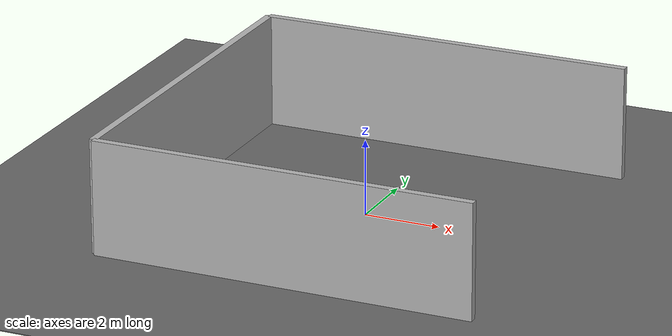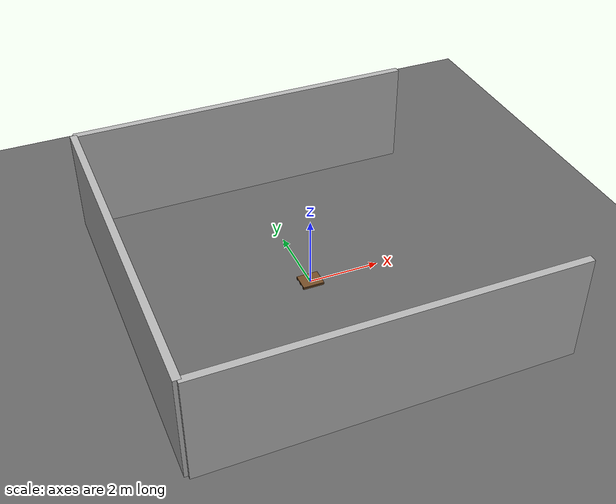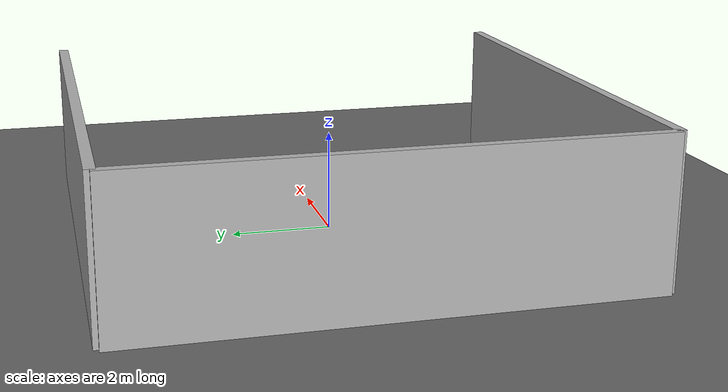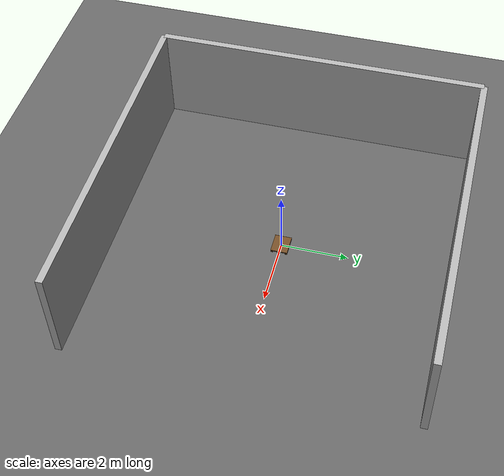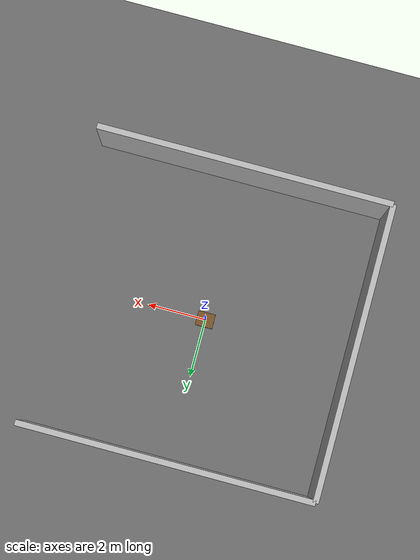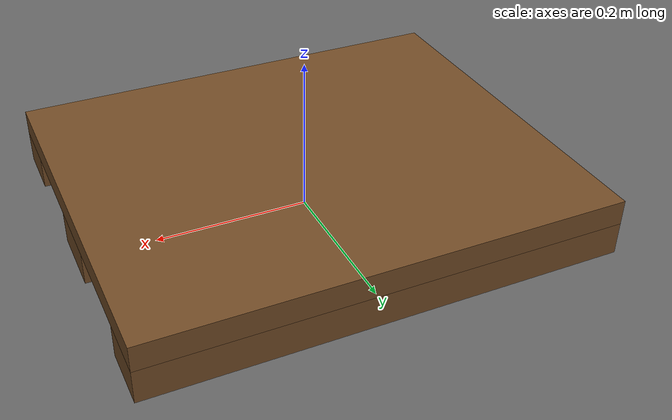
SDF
<sdf version="1.6">
 <world name="warehouse_world">
  <physics type="ode">
   <max_step_size>0.001</max_step_size>
   <real_time_update_rate>1000</real_time_update_rate>
  </physics>
  <scene><ambient>0.5 0.5 0.5 1</ambient><background>0.3 0.3 0.3 1</background><shadows>true</shadows></scene>
  <light name="sun" type="directional">
   <pose>0 0 20 0 0 0</pose>
   <diffuse>0.8 0.8 0.8 1</diffuse>
   <specular>0.2 0.2 0.2 1</specular>
   <attenuation>
    <range>1000</range>
    <constant>0.9</constant>
    <linear>0.01</linear>
    <quadratic>0.001</quadratic>
   </attenuation>
   <direction>-0.5 0.1 -0.9</direction>
  </light>
  <light name="warehouse_light_1" type="point">
   <pose>3 3 10 0 0 0</pose>
   <diffuse>0.7 0.7 0.6 1</diffuse>
   <specular>0.1 0.1 0.1 1</specular>
   <attenuation>
    <range>20</range>
    <constant>0.9</constant>
    <linear>0.05</linear>
    <quadratic>0.001</quadratic>
   </attenuation>
  </light>
  <light name="warehouse_light_2" type="point">
   <pose>-3 -3 10 0 0 0</pose>
   <diffuse>0.7 0.7 0.6 1</diffuse>
   <specular>0.1 0.1 0.1 1</specular>
   <attenuation>
    <range>20</range>
    <constant>0.9</constant>
    <linear>0.05</linear>
    <quadratic>0.001</quadratic>
   </attenuation>
  </light>
  <model name="concrete_floor">
   <static>true</static>
   <pose>0 0 -0.01 0 0 0</pose>
   <link name="link">
    <collision name="collision"><geometry><box><size>50 50 0.02</size></box></geometry></collision>
    <visual name="visual">
     <geometry><box><size>50 50 0.02</size></box></geometry>
     <material>
      <ambient>0.4 0.4 0.4 1</ambient>
      <diffuse>0.4 0.4 0.4 1</diffuse>
      <specular>0.05 0.05 0.05 1</specular>
     </material>
    </visual>
   </link>
  </model>
  <model name="back_wall">
   <static>true</static>
   <pose>-5 0 1.5 0 0 0</pose>
   <link name="link">
    <collision name="collision"><geometry><box><size>0.2 10 3</size></box></geometry></collision>
    <visual name="visual">
     <geometry><box><size>0.2 10 3</size></box></geometry>
     <material><ambient>0.7 0.7 0.7 1</ambient><diffuse>0.7 0.7 0.7 1</diffuse></material>
    </visual>
   </link>
  </model>
  <model name="left_wall">
   <static>true</static>
   <pose>0 -5 1.5 0 0 0</pose>
   <link name="link">
    <collision name="collision"><geometry><box><size>10 0.2 3</size></box></geometry></collision>
    <visual name="visual">
     <geometry><box><size>10 0.2 3</size></box></geometry>
     <material><ambient>0.7 0.7 0.7 1</ambient><diffuse>0.7 0.7 0.7 1</diffuse></material>
    </visual>
   </link>
  </model>
  <model name="right_wall">
   <static>true</static>
   <pose>0 5 1.5 0 0 0</pose>
   <link name="link">
    <collision name="collision"><geometry><box><size>10 0.2 3</size></box></geometry></collision>
    <visual name="visual">
     <geometry><box><size>10 0.2 3</size></box></geometry>
     <material><ambient>0.7 0.7 0.7 1</ambient><diffuse>0.7 0.7 0.7 1</diffuse></material>
    </visual>
   </link>
  </model>
  <model name="pallet">
   <static>false</static>
   <link name="pallet_base">
    <pose>0 0 0.05875 0 0 0</pose>
    <inertial>
     <mass>2.0</mass>
     <inertia><ixx>0.02</ixx><ixy>0</ixy><ixz>0</ixz><iyy>0.02</iyy><iyz>0</iyz><izz>0.04</izz></inertia>
    </inertial>
    <collision name="base_collision">
     <geometry><box><size>0.6 0.5 0.0325</size></box></geometry>
     <surface><friction><ode><mu>0.8</mu><mu2>0.6</mu2></ode></friction></surface>
    </collision>
    <visual name="base_visual">
     <geometry><box><size>0.6 0.5 0.0325</size></box></geometry>
     <material>
      <ambient>0.45 0.3 0.15 1</ambient>
      <diffuse>0.45 0.3 0.15 1</diffuse>
      <specular>0.1 0.1 0.1 1</specular>
     </material>
    </visual>
   </link>
   <link name="left_leg">
    <pose>0.0 0.2125 0.02125 0 0 0</pose>
    <inertial>
     <mass>0.5</mass>
     <inertia><ixx>0.001</ixx><ixy>0</ixy><ixz>0</ixz><iyy>0.001</iyy><iyz>0</iyz><izz>0.001</izz></inertia>
    </inertial>
    <collision name="left_leg_collision"><geometry><box><size>0.6 0.075 0.0425</size></box></geometry></collision>
    <visual name="left_leg_visual">
     <geometry><box><size>0.6 0.075 0.0425</size></box></geometry>
     <material>
      <ambient>0.45 0.3 0.15 1</ambient>
      <diffuse>0.45 0.3 0.15 1</diffuse>
      <specular>0.1 0.1 0.1 1</specular>
     </material>
    </visual>
   </link>
   <link name="center_leg">
    <pose>0.0 -0.2125 0.02125 0 0 0</pose>
    <inertial>
     <mass>0.5</mass>
     <inertia><ixx>0.001</ixx><ixy>0</ixy><ixz>0</ixz><iyy>0.001</iyy><iyz>0</iyz><izz>0.001</izz></inertia>
    </inertial>
    <collision name="center_leg_collision">
     <geometry><box><size>0.6 0.075 0.0425</size></box></geometry>
    </collision>
    <visual name="center_leg_visual">
     <geometry><box><size>0.6 0.075 0.0425</size></box></geometry>
     <material>
      <ambient>0.45 0.3 0.15 1</ambient>
      <diffuse>0.45 0.3 0.15 1</diffuse>
      <specular>0.1 0.1 0.1 1</specular>
     </material>
    </visual>
   </link>
   <link name="right_leg">
    <pose>0 0 0.021255 0 0 0</pose>
    <inertial>
     <mass>0.5</mass>
     <inertia><ixx>0.001</ixx><ixy>0</ixy><ixz>0</ixz><iyy>0.001</iyy><iyz>0</iyz><izz>0.001</izz></inertia>
    </inertial>
    <collision name="right_leg_collision"><geometry><box><size>0.6 0.09 0.0425</size></box></geometry></collision>
    <visual name="right_leg_visual">
     <geometry><box><size>0.6 0.09 0.0425</size></box></geometry>
     <material>
      <ambient>0.45 0.3 0.15 1</ambient>
      <diffuse>0.45 0.3 0.15 1</diffuse>
      <specular>0.1 0.1 0.1 1</specular>
     </material>
    </visual>
   </link>
   <joint name="left_leg_joint" type="fixed"><parent>pallet_base</parent><child>left_leg</child></joint>
   <joint name="center_leg_joint" type="fixed"><parent>pallet_base</parent><child>center_leg</child></joint>
   <joint name="right_leg_joint" type="fixed"><parent>pallet_base</parent><child>right_leg</child></joint>
  </model>
  <model name="rgbd_camera">
   <static>true</static>
   <pose>4 0 0.5 0 0.0 3.14</pose>
   <link name="camera_link">
    <inertial>
     <mass>1.0</mass>
     <inertia><ixx>1</ixx><ixy>0</ixy><ixz>0</ixz><iyy>1</iyy><iyz>0</iyz><izz>1</izz></inertia>
    </inertial>
    <sensor name="rgb_camera" type="camera">
     <always_on>true</always_on>
     <update_rate>30</update_rate>
     <visualize>true</visualize>
     <camera>
      <horizontal_fov>1.1015</horizontal_fov>
      <image><width>640</width><height>480</height><format>R8G8B8</format></image>
      <clip><near>0.1</near><far>15.0</far></clip>
     </camera>
     <plugin name="rgb_camera_plugin" filename="libgazebo_ros_camera.so">
      <ros>
       <namespace>/rgbd</namespace>
       <remapping>image_raw:=rgb_camera/image_raw</remapping>
       <remapping>camera_info:=rgb_camera/camera_info</remapping>
      </ros>
      <frame_name>camera_link</frame_name>
     </plugin>
    </sensor>
    <sensor name="depth_camera" type="depth">
     <always_on>true</always_on>
     <update_rate>30</update_rate>
     <visualize>false</visualize>
     <camera>
      <horizontal_fov>1.0192</horizontal_fov>
      <image><width>640</width><height>480</height><format>R_FLOAT32</format></image>
      <clip><near>0.1</near><far>15.0</far></clip>
     </camera>
     <plugin name="depth_camera_plugin" filename="libgazebo_ros_camera.so">
      <ros>
       <namespace>/rgbd</namespace>
       <remapping>image_raw:=depth_camera/image_raw</remapping>
       <remapping>camera_info:=depth_camera/camera_info</remapping>
      </ros>
      <frame_name>camera_link</frame_name>
     </plugin>
    </sensor>
   </link>
  </model>
  <plugin name="gazebo_ros_state" filename="libgazebo_ros_state.so">
   <ros><namespace>/gazebo</namespace></ros>
   <update_rate>30</update_rate>
  </plugin>
 </world>
</sdf>
